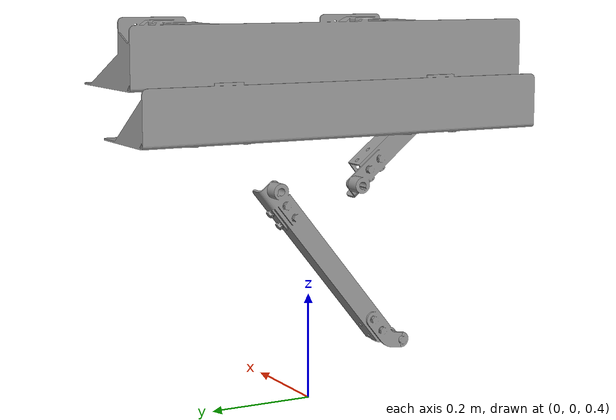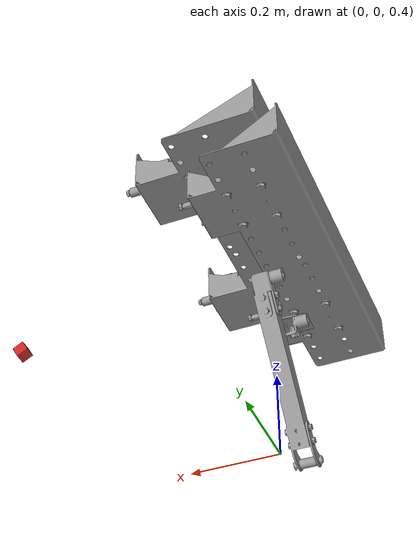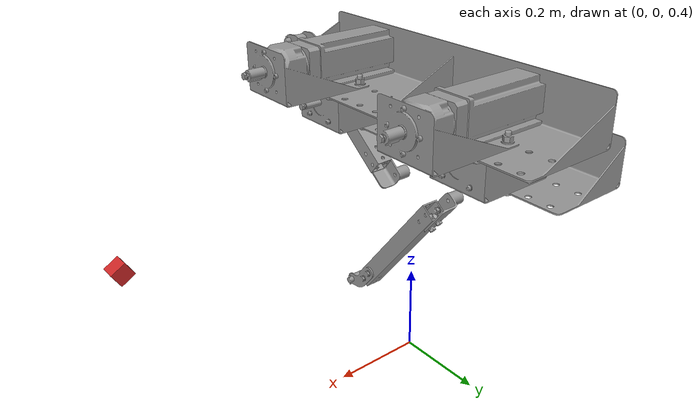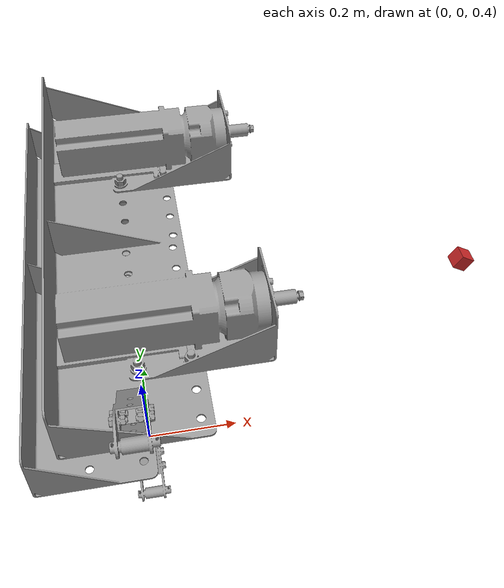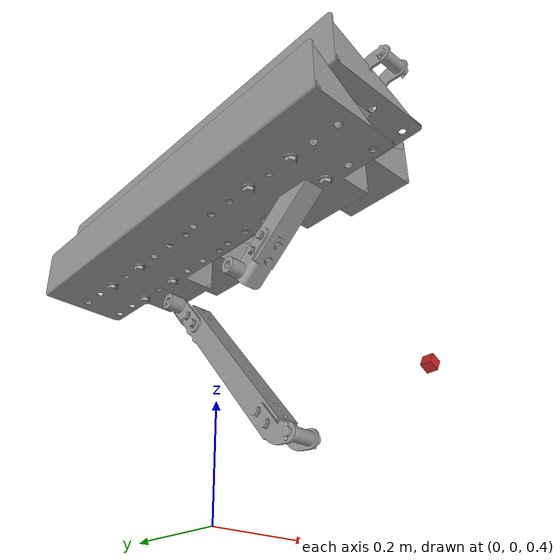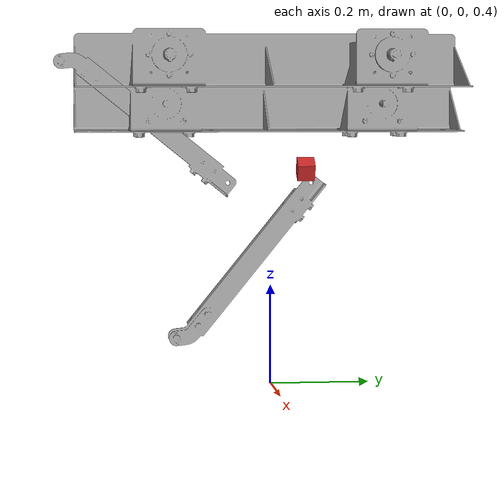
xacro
<?xml version="1.0"?>

<robot xmlns:xacro="http://www.ros.org/wiki/xacro" name="volcaniarm">

  <xacro:arg name="is_ignition" default="true" />

  <!-- Include materials -->
  <xacro:include filename="$(find volcaniarm_description)/urdf/materials.xacro"/>
  <xacro:include filename="$(find volcaniarm_description)/urdf/volcaniarm_gazebo.xacro"/>
  <xacro:include filename="$(find volcaniarm_description)/urdf/volcaniarm_ros2_control.xacro"/>

  <!-- World link (fixed reference frame) -->
  <link name="world"/>

  <!-- Fixed joint to keep the robot in place -->
  <joint name="world_to_base" type="fixed">
    <origin xyz="0 0 1.0" rpy="0 0 0"/>
    <parent link="world"/>
    <child link="volcaniarm_base_link"/>
  </joint>

  <!-- volcaniarm_base_link -->
  <link name="volcaniarm_base_link">
    <inertial>
      <origin xyz="-0.0270292275136268 0.0131760845218784 -0.0373225307756109" rpy="0 0 0"/>
      <mass value="13.6269163204302"/>
      <inertia ixx="0.0576447761387568" ixy="2.74831669755734E-05" ixz="5.43946096689231E-06"
               iyy="1.21122548907616" iyz="-1.83402806932084E-05" izz="1.26082925995101"/>
    </inertial>
    <visual>
      <origin xyz="0 0 0" rpy="0 0 0"/>
      <geometry>
        <mesh filename="package://volcaniarm_description/meshes/volcaniarm_base_link.STL"/>
      </geometry>
      <material name="grey"/>
    </visual>
    <collision>
      <origin xyz="0 0 0" rpy="0 0 0"/>
      <geometry>
        <mesh filename="package://volcaniarm_description/meshes/volcaniarm_base_link.STL"/>
      </geometry>
    </collision>
  </link>

  <!-- delta_arm_base_link -->
  <link name="delta_arm_base_link">
    <inertial>
      <origin xyz="-0.00902773080675034 -1.78293986968781E-05 -0.0512376164000921" rpy="0 0 0"/>
      <mass value="2.15013589886699"/>
      <inertia ixx="0.00670575094115183" ixy="-5.65872149932825E-09" ixz="2.35502761390986E-06"
               iyy="0.00584240556923599" iyz="3.00404195469226E-11" izz="0.0113637883201367"/>
    </inertial>
    <visual>
      <origin xyz="0 0 0" rpy="0 0 0"/>
      <geometry>
        <mesh filename="package://volcaniarm_description/meshes/delta_arm_base_link.STL"/>
      </geometry>
      <material name="grey"/>
    </visual>
    <collision>
      <origin xyz="0 0 0" rpy="0 0 0"/>
      <geometry>
        <mesh filename="package://volcaniarm_description/meshes/delta_arm_base_link.STL"/>
      </geometry>
    </collision>
  </link>

  <joint name="delta_arm_base_joint" type="prismatic">
    <origin xyz="-0.069512 0 -0.0905" rpy="0 0 0"/>
    <parent link="volcaniarm_base_link"/>
    <child link="delta_arm_base_link"/>
    <axis xyz="-1 0 0"/>
    <limit lower="-0.5" upper="0.3" effort="2" velocity="2"/>
    <dynamics damping="5.0" friction="0.9"/>
  </joint>

  <!-- right_elbow_link -->
  <link name="right_elbow_link">
    <inertial>
      <origin xyz="-1.10526378793718E-05 8.25561841111266E-13 0.169908181946343" rpy="0 0 0"/>
      <mass value="0.57558402444417"/>
      <inertia ixx="0.00641206627372397" ixy="-1.17949337905161E-19" ixz="-1.08070667288964E-06"
               iyy="0.00641457318952708" iyz="-3.11708124589583E-19" izz="0.000156325566535823"/>
    </inertial>
    <visual>
      <origin xyz="0 0 0" rpy="0 0 0"/>
      <geometry>
        <mesh filename="package://volcaniarm_description/meshes/right_elbow_link.STL"/>
      </geometry>
      <material name="grey"/>
    </visual>
    <collision>
      <origin xyz="0 0 0" rpy="0 0 0"/>
      <geometry>
        <mesh filename="package://volcaniarm_description/meshes/right_elbow_link.STL"/>
      </geometry>
    </collision>
  </link>

  <joint name="right_elbow_joint" type="revolute">
    <origin xyz="0.03 -0.085 -0.1035" rpy="2.4621 0 0"/>
    <parent link="delta_arm_base_link"/>
    <child link="right_elbow_link"/>
    <axis xyz="1 0 0"/>
    <limit lower="-1.57" upper="1.57" effort="10" velocity="10"/>
  </joint>

  <!-- left_elbow_link -->
  <link name="left_elbow_link">
    <inertial>
      <origin xyz="-1.10526381558174E-05 -3.52899931499451E-11 0.169908182007537" rpy="0 0 0"/>
      <mass value="0.575584024444165"/>
      <inertia ixx="0.00641206627372392" ixy="5.31513174401966E-20" ixz="-1.08070667288878E-06"
               iyy="0.00641457318952703" iyz="2.59530895038718E-18" izz="0.000156325566535821"/>
    </inertial>
    <visual>
      <origin xyz="0 0 0" rpy="0 0 0"/>
      <geometry>
        <mesh filename="package://volcaniarm_description/meshes/left_elbow_link.STL"/>
      </geometry>
      <material name="grey"/>
    </visual>
    <collision>
      <origin xyz="0 0 0" rpy="0 0 0"/>
      <geometry>
        <mesh filename="package://volcaniarm_description/meshes/left_elbow_link.STL"/>
      </geometry>
    </collision>
  </link>

  <joint name="left_elbow_joint" type="revolute">
    <origin xyz="0.03 0.085 -0.1035" rpy="-2.2502 0 0"/>
    <parent link="delta_arm_base_link"/>
    <child link="left_elbow_link"/>
    <axis xyz="1 0 0"/>
    <limit lower="-1.57" upper="1.57" effort="10" velocity="10"/>
  </joint>

  <!-- right_arm_link -->

  <!-- left_arm_link -->

  <!-- Depth Camera -->
  <joint type="fixed" name="camera_joint">
    <origin xyz="0.65 0 -0.14" rpy="3.14 2.1 0"/>
    <child link="camera_link"/>
    <parent link="volcaniarm_base_link"/>
    <axis xyz="0 1 0" />
  </joint>

  <link name='camera_link'>
    <pose>0 0 0 0 0 0</pose>
    <inertial>
      <mass value="0.1"/>
      <origin xyz="0 0 0" rpy="0 0 0"/>
      <inertia
          ixx="1e-6" ixy="0" ixz="0"
          iyy="1e-6" iyz="0"
          izz="1e-6"
      />
    </inertial>

    <collision name='collision'>
      <origin xyz="0 0 0" rpy="0 0 0"/>
      <geometry>
         <box size=".03 .03 .03"/>
      </geometry>
    </collision>

    <visual name='camera_link_visual'>
      <origin xyz="0 0 0" rpy="0 0 0"/>
      <geometry>
        <box size=".03 .03 .03"/>
      </geometry>
    </visual>

  </link>

  <gazebo reference="camera_link">
    <material>Gazebo/Red</material>
  </gazebo>

  <joint type="fixed" name="camera_optical_joint">
    <origin xyz="0 0 0" rpy="-1.5707 0 -1.5707"/>
    <child link="camera_link_optical"/>
    <parent link="camera_link"/>
  </joint>

  <link name="camera_link_optical">
  </link>

</robot>
